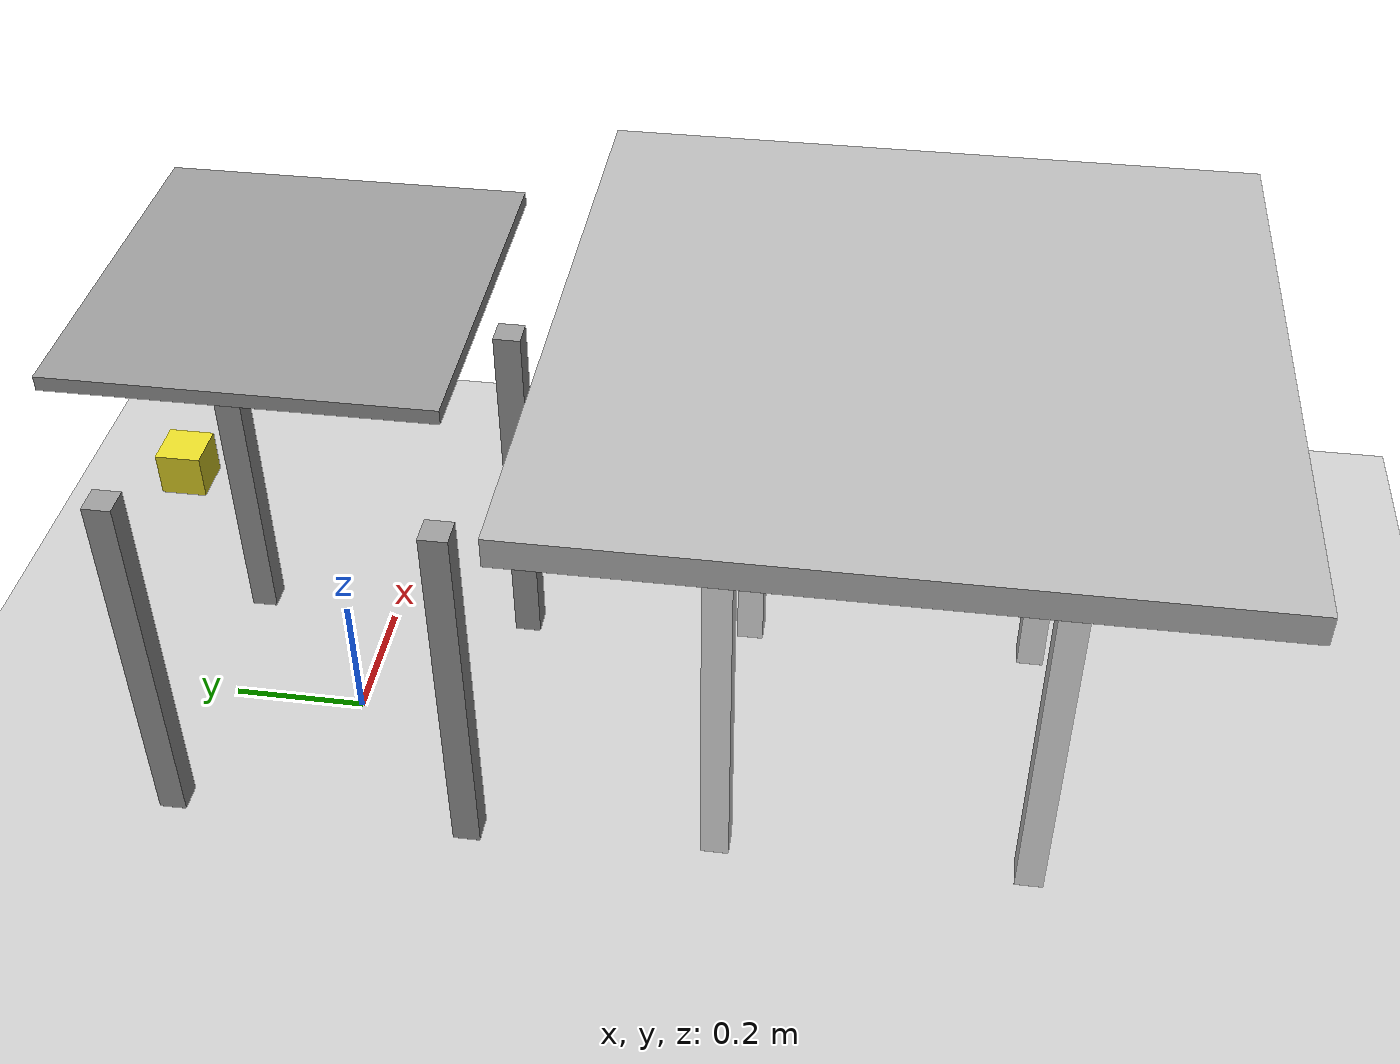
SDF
<sdf version="1.6">
 <world name="ur5_lego">
  <gravity>0 0 -9.81</gravity>
  <physics name="default_physics" default="0" type="ode">
   <max_step_size>0.001</max_step_size>
   <real_time_factor>1</real_time_factor>
   <real_time_update_rate>1000</real_time_update_rate>
  </physics>
  <scene><ambient>0.4 0.4 0.4 1</ambient><background>0.7 0.7 0.7 1</background><shadows>1</shadows></scene>
  <include><uri>model://sun</uri></include>
  <include><uri>model://ground_plane</uri></include>
  <model name="ur5_base"><include><uri>model://ur5_base</uri></include></model>
  <model name="end_table"><include><uri>model://end_table</uri><pose>0 -0.8 0 0 0 0</pose></include></model>
  <model name="cube1">
   <pose>-0.4 0.0 0.775 0 0 0</pose>
   <link name="link">
    <pose>0 0 0.025 0 0 0</pose>
    <inertial>
     <mass>0.0565</mass>
     <inertia>
      <ixx>2.3541666666666672e-05</ixx>
      <ixy>0</ixy>
      <ixz>0</ixz>
      <iyy>2.3541666666666672e-05</iyy>
      <iyz>0</iyz>
      <izz>2.3541666666666672e-05</izz>
     </inertia>
    </inertial>
    <collision name="collision">
     <geometry><box><size>0.05 0.05 0.05</size></box></geometry>
     <surface>
      <contact>
       <poissons_ratio>0.347</poissons_ratio>
       <elastic_modulus>8.8e+09</elastic_modulus>
       <ode><kp>100000</kp><kd>1</kd><max_vel>1.0</max_vel><min_depth>0.001</min_depth></ode>
      </contact>
      <friction>
       <torsional>
        <coefficient>1.0</coefficient>
        <use_patch_radius>0</use_patch_radius>
        <surface_radius>0.05</surface_radius>
       </torsional>
      </friction>
     </surface>
    </collision>
    <visual name="visual">
     <geometry><box><size>0.05 0.05 0.05</size></box></geometry>
     <material>
      <script><uri>file://media/materials/scripts/gazebo.material</uri><name>Gazebo/Yellow</name></script>
     </material>
    </visual>
   </link>
  </model>
 </world>
</sdf>

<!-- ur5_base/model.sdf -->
<sdf version="1.6">
  <model name="ur5_base">
    <static>true</static>

    <link name="top_plate">
      <pose>0 0 0.775 0 0 0</pose>
      <collision name="top_plate_collision">
        <geometry>
          <box>
            <size>0.5 0.5 0.02</size>
          </box>
        </geometry>
        <surface>
          <contact>
            <collide_bitmask>0x01</collide_bitmask>
          </contact>
        </surface>
      </collision>
      <visual name="top_plate_visual">
        <geometry>
          <box>
            <size>0.5 0.5 0.02</size>
          </box>
        </geometry>
        <material>
          <script>
            <uri>file://media/materials/scripts/gazebo.material</uri>
            <name>Gazebo/Grey</name>
          </script>
        </material>
      </visual>
    </link>
    <link name="leg1">
      <pose>0.22 0.22 0.285 0 0 0</pose>
      <collision name="leg1_collision">
        <geometry>
          <box>
            <size>0.04 0.04 0.57</size>
          </box>
        </geometry>
      </collision>
      <visual name="leg1_visual">
        <geometry>
          <box>
            <size>0.04 0.04 0.57</size>
          </box>
        </geometry>
        <material>
          <script>
            <uri>file://media/materials/scripts/gazebo.material</uri>
            <name>Gazebo/Grey</name>
          </script>
        </material>
      </visual>
    </link>
    <link name="leg2">
      <pose>-0.22 0.22 0.285 0 0 0</pose>
      <collision name="leg2_collision">
        <geometry>
          <box>
            <size>0.04 0.04 0.57</size>
          </box>
        </geometry>
      </collision>
      <visual name="leg2_visual">
        <geometry>
          <box>
            <size>0.04 0.04 0.57</size>
          </box>
        </geometry>
        <material>
          <script>
            <uri>file://media/materials/scripts/gazebo.material</uri>
            <name>Gazebo/Grey</name>
          </script>
        </material>
      </visual>
    </link>
    <link name="leg3">
      <pose>0.22 -0.22 0.285 0 0 0</pose>
      <collision name="leg3_collision">
        <geometry>
          <box>
            <size>0.04 0.04 0.57</size>
          </box>
        </geometry>
      </collision>
      <visual name="leg3_visual">
        <geometry>
          <box>
            <size>0.04 0.04 0.57</size>
          </box>
        </geometry>
        <material>
          <script>
            <uri>file://media/materials/scripts/gazebo.material</uri>
            <name>Gazebo/Grey</name>
          </script>
        </material>
      </visual>
    </link>
    <link name="leg4">
      <pose>-0.22 -0.22 0.285 0 0 0</pose>
      <collision name="leg4_collision">
        <geometry>
          <box>
            <size>0.04 0.04 0.57</size>
          </box>
        </geometry>
      </collision>
      <visual name="leg4_visual">
        <geometry>
          <box>
            <size>0.04 0.04 0.57</size>
          </box>
        </geometry>
        <material>
          <script>
            <uri>file://media/materials/scripts/gazebo.material</uri>
            <name>Gazebo/Grey</name>
          </script>
        </material>
      </visual>
    </link>
  </model>
</sdf>

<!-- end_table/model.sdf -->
<sdf version="1.6">
  <model name="end_table">
    <static>true</static>

    <link name="top_plate">
      <pose>0 0 0.755 0 0 0</pose>
      <collision name="top_plate_collision">
        <geometry>
          <box>
            <size>0.913 0.913 0.04</size>
          </box>
        </geometry>
        <surface>
          <contact>
            <collide_bitmask>0x01</collide_bitmask>
          </contact>
        </surface>
      </collision>
      <visual name="top_plate_visual">
        <geometry>
          <box>
            <size>0.913 0.913 0.04</size>
          </box>
        </geometry>
        <material>
          <script>
            <uri>model://end_table/materials/scripts</uri>
            <uri>model://end_table/materials/textures</uri>
            <name>grid/Image</name>
          </script>
        </material>
      </visual>
    </link>
    <link name="leg1">
      <pose>0.22 0.22 0.4 0 0 0</pose>
      <collision name="leg1_collision">
        <geometry>
          <box>
            <size>0.04 0.04 0.74</size>
          </box>
        </geometry>
      </collision>
      <visual name="leg1_visual">
        <geometry>
          <box>
            <size>0.04 0.04 0.74</size>
          </box>
        </geometry>
        <material>
          <script>
            <uri>file://media/materials/scripts/gazebo.material</uri>
            <name>Gazebo/White</name>
          </script>
        </material>
      </visual>
    </link>
    <link name="leg2">
      <pose>-0.22 0.22 0.4 0 0 0</pose>
      <collision name="leg2_collision">
        <geometry>
          <box>
            <size>0.04 0.04 0.74</size>
          </box>
        </geometry>
      </collision>
      <visual name="leg2_visual">
        <geometry>
          <box>
            <size>0.04 0.04 0.74</size>
          </box>
        </geometry>
        <material>
          <script>
            <uri>file://media/materials/scripts/gazebo.material</uri>
            <name>Gazebo/White</name>
          </script>
        </material>
      </visual>
    </link>
    <link name="leg3">
      <pose>0.22 -0.22 0.4 0 0 0</pose>
      <collision name="leg3_collision">
        <geometry>
          <box>
            <size>0.04 0.04 0.74</size>
          </box>
        </geometry>
      </collision>
      <visual name="leg3_visual">
        <geometry>
          <box>
            <size>0.04 0.04 0.74</size>
          </box>
        </geometry>
        <material>
          <script>
            <uri>file://media/materials/scripts/gazebo.material</uri>
            <name>Gazebo/White</name>
          </script>
        </material>
      </visual>
    </link>
    <link name="leg4">
      <pose>-0.22 -0.22 0.4 0 0 0</pose>
      <collision name="leg4_collision">
        <geometry>
          <box>
            <size>0.04 0.04 0.74</size>
          </box>
        </geometry>
      </collision>
      <visual name="leg4_visual">
        <geometry>
          <box>
            <size>0.04 0.04 0.74</size>
          </box>
        </geometry>
        <material>
          <script>
            <uri>file://media/materials/scripts/gazebo.material</uri>
            <name>Gazebo/White</name>
          </script>
        </material>
      </visual>
    </link>
  </model>
</sdf>
